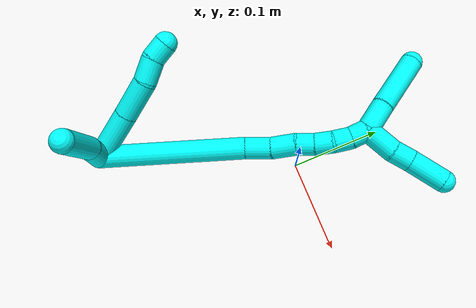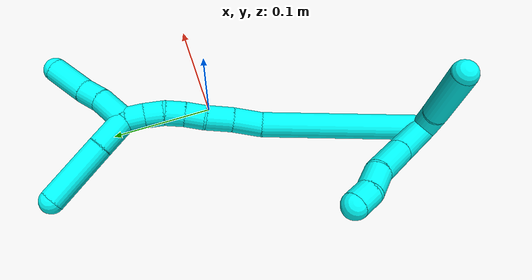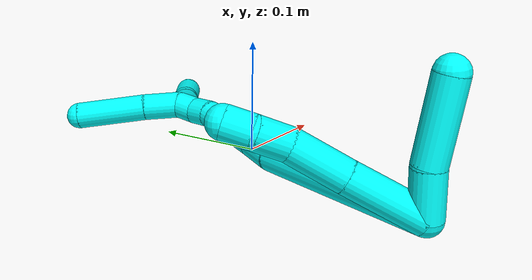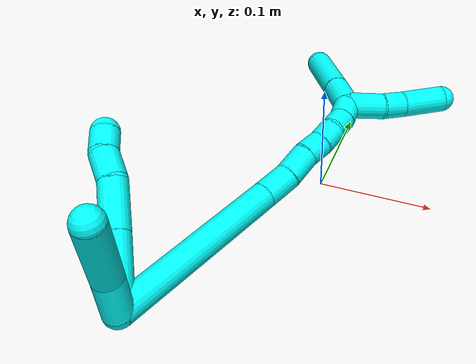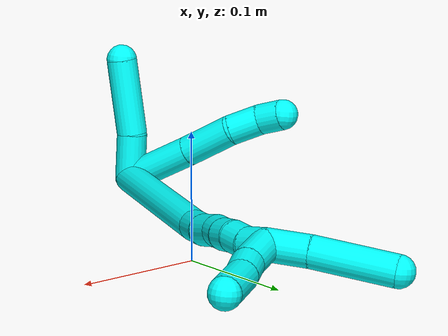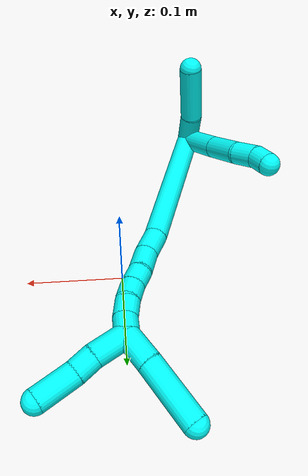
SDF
<sdf version="1.7">
 <world name="default">
  <model name="photoneo_s_sensor">
   <static>1</static>
   <pose>0 0 2 1.57079 1.57079 3.14159</pose>
   <link name="link">
    <inertial><mass>0.1</mass></inertial>
    <sensor name="sensor" type="depth">
     <update_rate>30</update_rate>
     <camera>
      <horizontal_fov>1.22</horizontal_fov>
      <image><width>1920</width><height>1200</height><format>B8G8R8</format></image>
      <clip><near>0.1</near><far>4</far></clip>
      <depth_camera><output>points</output></depth_camera>
     </camera>
     <plugin name="camera_plugin" filename="libgazebo_ros_depth_camera.so">
      <baseline>0.2</baseline>
      <alwaysOn>1</alwaysOn>
      <updateRate>0.0</updateRate>
      <cameraName>camera_ir</cameraName>
      <imageTopicName>/camera/color/image_raw</imageTopicName>
      <cameraInfoTopicName>/camera/color/camera_info</cameraInfoTopicName>
      <depthImageTopicName>/camera/depth/image_raw</depthImageTopicName>
      <depthImageCameraInfoTopicName>/camera/depth/camera_info</depthImageCameraInfoTopicName>
      <pointCloudTopicName>/camera/depth/points</pointCloudTopicName>
      <frameName>fr_optical</frameName>
      <pointCloudCutoff>0.1</pointCloudCutoff>
      <pointCloudCutoffMax>2.0</pointCloudCutoffMax>
      <distortionK1>0</distortionK1>
      <distortionK2>0</distortionK2>
      <distortionK3>0</distortionK3>
      <distortionT1>0</distortionT1>
      <distortionT2>0</distortionT2>
      <CxPrime>0</CxPrime>
      <Cx>0</Cx>
      <Cy>0</Cy>
      <focalLength>0</focalLength>
      <hackBaseline>0</hackBaseline>
     </plugin>
    </sensor>
   </link>
  </model>
  <model name="bin">
   <static>1</static>
   <link name="bottom">
    <collision name="collision-bottom">
     <pose>0 0 -0.01 0 -0 0</pose>
     <geometry><box><size>0.8 0.6 0.02</size></box></geometry>
     <surface>
      <friction><ode><mu>100</mu><mu2>100</mu2></ode></friction>
      <contact><collide_bitmask>65535</collide_bitmask></contact>
     </surface>
    </collision>
   </link>
   <link name="west_wall">
    <collision name="collision-west_wall">
     <pose>-0.41 0 0.1 0 -0 0</pose>
     <geometry><box><size>0.02 0.6 0.2</size></box></geometry>
     <surface>
      <friction><ode><mu>100</mu><mu2>100</mu2></ode></friction>
      <contact><collide_bitmask>65535</collide_bitmask></contact>
     </surface>
    </collision>
   </link>
   <link name="east_wall">
    <collision name="collision-east_wall">
     <pose>0.41 0 0.1 0 -0 0</pose>
     <geometry><box><size>0.02 0.6 0.2</size></box></geometry>
     <surface>
      <friction><ode><mu>100</mu><mu2>100</mu2></ode></friction>
      <contact><collide_bitmask>65535</collide_bitmask></contact>
     </surface>
    </collision>
   </link>
   <link name="south_wall">
    <collision name="collision-south_wall">
     <pose>0 -0.31 0.1 0 -0 0</pose>
     <geometry><box><size>0.8 0.02 0.2</size></box></geometry>
     <surface>
      <friction><ode><mu>100</mu><mu2>100</mu2></ode></friction>
      <contact><collide_bitmask>65535</collide_bitmask></contact>
     </surface>
    </collision>
   </link>
   <link name="north_wall">
    <collision name="collision-north_wall">
     <pose>0 0.31 0.1 0 -0 0</pose>
     <geometry><box><size>0.8 0.02 0.2</size></box></geometry>
     <surface>
      <friction><ode><mu>100</mu><mu2>100</mu2></ode></friction>
      <contact><collide_bitmask>65535</collide_bitmask></contact>
     </surface>
    </collision>
   </link>
  </model>
  <model name="3">
   <static>0</static>
   <link name="3">
    <collision name="collision-cylinder-e_1_2_8">
     <pose>-0.002727 0.025598 0.015291 -1.03231 -0.091202 0.051778</pose>
     <geometry><cylinder><radius>0.0125</radius><length>0.059883</length></cylinder></geometry>
     <surface>
      <friction><ode><mu>1.16</mu><mu2>1.16</mu2><slip1>0</slip1><slip2>0</slip2></ode></friction>
      <contact><ode><kp>1e+06</kp><kd>1</kd><max_vel>0</max_vel><min_depth>0.001</min_depth></ode></contact>
     </surface>
    </collision>
    <visual name="visual-cylinder-e_1_2_8">
     <pose>-0.002727 0.025598 0.015291 -1.03231 -0.091202 0.051778</pose>
     <geometry><cylinder><radius>0.0125</radius><length>0.059883</length></cylinder></geometry>
     <material><ambient>0.003922 1 0.996078 1</ambient></material>
    </visual>
    <collision name="collision-cylinder-e_2_8_9">
     <pose>-0.007488 0.069385 0.042102 -1.00626 -0.09422 0.051883</pose>
     <geometry><cylinder><radius>0.0125</radius><length>0.043252</length></cylinder></geometry>
     <surface>
      <friction><ode><mu>1.16</mu><mu2>1.16</mu2><slip1>0</slip1><slip2>0</slip2></ode></friction>
      <contact><ode><kp>1e+06</kp><kd>1</kd><max_vel>0</max_vel><min_depth>0.001</min_depth></ode></contact>
     </surface>
    </collision>
    <visual name="visual-cylinder-e_2_8_9">
     <pose>-0.007488 0.069385 0.042102 -1.00626 -0.09422 0.051883</pose>
     <geometry><cylinder><radius>0.0125</radius><length>0.043252</length></cylinder></geometry>
     <material><ambient>0.003922 1 0.996078 1</ambient></material>
    </visual>
    <collision name="collision-cylinder-e_3_9_10">
     <pose>-0.014021 0.098381 0.059378 -1.0813 -0.352073 0.212759</pose>
     <geometry><cylinder><radius>0.0125</radius><length>0.026089</length></cylinder></geometry>
     <surface>
      <friction><ode><mu>1.16</mu><mu2>1.16</mu2><slip1>0</slip1><slip2>0</slip2></ode></friction>
      <contact><ode><kp>1e+06</kp><kd>1</kd><max_vel>0</max_vel><min_depth>0.001</min_depth></ode></contact>
     </surface>
    </collision>
    <visual name="visual-cylinder-e_3_9_10">
     <pose>-0.014021 0.098381 0.059378 -1.0813 -0.352073 0.212759</pose>
     <geometry><cylinder><radius>0.0125</radius><length>0.026089</length></cylinder></geometry>
     <material><ambient>0.003922 1 0.996078 1</ambient></material>
    </visual>
    <collision name="collision-cylinder-e_4_10_6">
     <pose>-0.019207 0.118967 0.068569 -1.23309 -0.066254 0.046963</pose>
     <geometry><cylinder><radius>0.0125</radius><length>0.020776</length></cylinder></geometry>
     <surface>
      <friction><ode><mu>1.16</mu><mu2>1.16</mu2><slip1>0</slip1><slip2>0</slip2></ode></friction>
      <contact><ode><kp>1e+06</kp><kd>1</kd><max_vel>0</max_vel><min_depth>0.001</min_depth></ode></contact>
     </surface>
    </collision>
    <visual name="visual-cylinder-e_4_10_6">
     <pose>-0.019207 0.118967 0.068569 -1.23309 -0.066254 0.046963</pose>
     <geometry><cylinder><radius>0.0125</radius><length>0.020776</length></cylinder></geometry>
     <material><ambient>0.003922 1 0.996078 1</ambient></material>
    </visual>
    <collision name="collision-cylinder-e_1_2_11">
     <pose>0.000801 -0.000438 0.018627 0.023524 0.042954 0.000505</pose>
     <geometry><cylinder><radius>0.0125</radius><length>0.0373</length></cylinder></geometry>
     <surface>
      <friction><ode><mu>1.16</mu><mu2>1.16</mu2><slip1>0</slip1><slip2>0</slip2></ode></friction>
      <contact><ode><kp>1e+06</kp><kd>1</kd><max_vel>0</max_vel><min_depth>0.001</min_depth></ode></contact>
     </surface>
    </collision>
    <visual name="visual-cylinder-e_1_2_11">
     <pose>0.000801 -0.000438 0.018627 0.023524 0.042954 0.000505</pose>
     <geometry><cylinder><radius>0.0125</radius><length>0.0373</length></cylinder></geometry>
     <material><ambient>0.003922 1 0.996078 1</ambient></material>
    </visual>
    <collision name="collision-cylinder-e_2_11_5">
     <pose>0.004762 -0.006905 0.067857 0.194504 0.100995 0.009861</pose>
     <geometry><cylinder><radius>0.0125</radius><length>0.0627</length></cylinder></geometry>
     <surface>
      <friction><ode><mu>1.16</mu><mu2>1.16</mu2><slip1>0</slip1><slip2>0</slip2></ode></friction>
      <contact><ode><kp>1e+06</kp><kd>1</kd><max_vel>0</max_vel><min_depth>0.001</min_depth></ode></contact>
     </surface>
    </collision>
    <visual name="visual-cylinder-e_2_11_5">
     <pose>0.004762 -0.006905 0.067857 0.194504 0.100995 0.009861</pose>
     <geometry><cylinder><radius>0.0125</radius><length>0.0627</length></cylinder></geometry>
     <material><ambient>0.003922 1 0.996078 1</ambient></material>
    </visual>
    <collision name="collision-cylinder-e_1_2_12">
     <pose>0.050503 0.063437 -0.002293 -1.60693 0.672049 -0.694871</pose>
     <geometry><cylinder><radius>0.0125</radius><length>0.162236</length></cylinder></geometry>
     <surface>
      <friction><ode><mu>1.16</mu><mu2>1.16</mu2><slip1>0</slip1><slip2>0</slip2></ode></friction>
      <contact><ode><kp>1e+06</kp><kd>1</kd><max_vel>0</max_vel><min_depth>0.001</min_depth></ode></contact>
     </surface>
    </collision>
    <visual name="visual-cylinder-e_1_2_12">
     <pose>0.050503 0.063437 -0.002293 -1.60693 0.672049 -0.694871</pose>
     <geometry><cylinder><radius>0.0125</radius><length>0.162236</length></cylinder></geometry>
     <material><ambient>0.003922 1 0.996078 1</ambient></material>
    </visual>
    <collision name="collision-cylinder-e_2_12_13">
     <pose>0.111394 0.137322 -0.003049 -1.42461 0.77714 -0.679618</pose>
     <geometry><cylinder><radius>0.0125</radius><length>0.029626</length></cylinder></geometry>
     <surface>
      <friction><ode><mu>1.16</mu><mu2>1.16</mu2><slip1>0</slip1><slip2>0</slip2></ode></friction>
      <contact><ode><kp>1e+06</kp><kd>1</kd><max_vel>0</max_vel><min_depth>0.001</min_depth></ode></contact>
     </surface>
    </collision>
    <visual name="visual-cylinder-e_2_12_13">
     <pose>0.111394 0.137322 -0.003049 -1.42461 0.77714 -0.679618</pose>
     <geometry><cylinder><radius>0.0125</radius><length>0.029626</length></cylinder></geometry>
     <material><ambient>0.003922 1 0.996078 1</ambient></material>
    </visual>
    <collision name="collision-cylinder-e_3_13_14">
     <pose>0.130106 0.15873 0.001325 -1.31769 0.634063 -0.497539</pose>
     <geometry><cylinder><radius>0.0125</radius><length>0.028103</length></cylinder></geometry>
     <surface>
      <friction><ode><mu>1.16</mu><mu2>1.16</mu2><slip1>0</slip1><slip2>0</slip2></ode></friction>
      <contact><ode><kp>1e+06</kp><kd>1</kd><max_vel>0</max_vel><min_depth>0.001</min_depth></ode></contact>
     </surface>
    </collision>
    <visual name="visual-cylinder-e_3_13_14">
     <pose>0.130106 0.15873 0.001325 -1.31769 0.634063 -0.497539</pose>
     <geometry><cylinder><radius>0.0125</radius><length>0.028103</length></cylinder></geometry>
     <material><ambient>0.003922 1 0.996078 1</ambient></material>
    </visual>
    <collision name="collision-cylinder-e_4_14_15">
     <pose>0.145504 0.17672 0.005058 -1.44372 0.784379 -0.69842</pose>
     <geometry><cylinder><radius>0.0125</radius><length>0.020027</length></cylinder></geometry>
     <surface>
      <friction><ode><mu>1.16</mu><mu2>1.16</mu2><slip1>0</slip1><slip2>0</slip2></ode></friction>
      <contact><ode><kp>1e+06</kp><kd>1</kd><max_vel>0</max_vel><min_depth>0.001</min_depth></ode></contact>
     </surface>
    </collision>
    <visual name="visual-cylinder-e_4_14_15">
     <pose>0.145504 0.17672 0.005058 -1.44372 0.784379 -0.69842</pose>
     <geometry><cylinder><radius>0.0125</radius><length>0.020027</length></cylinder></geometry>
     <material><ambient>0.003922 1 0.996078 1</ambient></material>
    </visual>
    <collision name="collision-cylinder-e_5_15_16">
     <pose>0.158589 0.191603 0.007456 -1.38207 0.644782 -0.539113</pose>
     <geometry><cylinder><radius>0.0125</radius><length>0.020004</length></cylinder></geometry>
     <surface>
      <friction><ode><mu>1.16</mu><mu2>1.16</mu2><slip1>0</slip1><slip2>0</slip2></ode></friction>
      <contact><ode><kp>1e+06</kp><kd>1</kd><max_vel>0</max_vel><min_depth>0.001</min_depth></ode></contact>
     </surface>
    </collision>
    <visual name="visual-cylinder-e_5_15_16">
     <pose>0.158589 0.191603 0.007456 -1.38207 0.644782 -0.539113</pose>
     <geometry><cylinder><radius>0.0125</radius><length>0.020004</length></cylinder></geometry>
     <material><ambient>0.003922 1 0.996078 1</ambient></material>
    </visual>
    <collision name="collision-cylinder-e_6_16_17">
     <pose>0.169468 0.208187 0.008681 -1.60223 0.508311 -0.523823</pose>
     <geometry><cylinder><radius>0.0125</radius><length>0.020002</length></cylinder></geometry>
     <surface>
      <friction><ode><mu>1.16</mu><mu2>1.16</mu2><slip1>0</slip1><slip2>0</slip2></ode></friction>
      <contact><ode><kp>1e+06</kp><kd>1</kd><max_vel>0</max_vel><min_depth>0.001</min_depth></ode></contact>
     </surface>
    </collision>
    <visual name="visual-cylinder-e_6_16_17">
     <pose>0.169468 0.208187 0.008681 -1.60223 0.508311 -0.523823</pose>
     <geometry><cylinder><radius>0.0125</radius><length>0.020002</length></cylinder></geometry>
     <material><ambient>0.003922 1 0.996078 1</ambient></material>
    </visual>
    <collision name="collision-cylinder-e_7_17_1">
     <pose>0.177514 0.226243 0.010132 -1.38773 0.323417 -0.269759</pose>
     <geometry><cylinder><radius>0.0125</radius><length>0.020002</length></cylinder></geometry>
     <surface>
      <friction><ode><mu>1.16</mu><mu2>1.16</mu2><slip1>0</slip1><slip2>0</slip2></ode></friction>
      <contact><ode><kp>1e+06</kp><kd>1</kd><max_vel>0</max_vel><min_depth>0.001</min_depth></ode></contact>
     </surface>
    </collision>
    <visual name="visual-cylinder-e_7_17_1">
     <pose>0.177514 0.226243 0.010132 -1.38773 0.323417 -0.269759</pose>
     <geometry><cylinder><radius>0.0125</radius><length>0.020002</length></cylinder></geometry>
     <material><ambient>0.003922 1 0.996078 1</ambient></material>
    </visual>
    <collision name="collision-cylinder-e_1_1_18">
     <pose>0.197844 0.238473 0.007837 -2.51593 1.28922 -2.32893</pose>
     <geometry><cylinder><radius>0.0125</radius><length>0.035711</length></cylinder></geometry>
     <surface>
      <friction><ode><mu>1.16</mu><mu2>1.16</mu2><slip1>0</slip1><slip2>0</slip2></ode></friction>
      <contact><ode><kp>1e+06</kp><kd>1</kd><max_vel>0</max_vel><min_depth>0.001</min_depth></ode></contact>
     </surface>
    </collision>
    <visual name="visual-cylinder-e_1_1_18">
     <pose>0.197844 0.238473 0.007837 -2.51593 1.28922 -2.32893</pose>
     <geometry><cylinder><radius>0.0125</radius><length>0.035711</length></cylinder></geometry>
     <material><ambient>0.003922 1 0.996078 1</ambient></material>
    </visual>
    <collision name="collision-cylinder-e_2_18_19">
     <pose>0.225324 0.245225 0.00163 -2.08748 1.16611 -1.6956</pose>
     <geometry><cylinder><radius>0.0125</radius><length>0.022472</length></cylinder></geometry>
     <surface>
      <friction><ode><mu>1.16</mu><mu2>1.16</mu2><slip1>0</slip1><slip2>0</slip2></ode></friction>
      <contact><ode><kp>1e+06</kp><kd>1</kd><max_vel>0</max_vel><min_depth>0.001</min_depth></ode></contact>
     </surface>
    </collision>
    <visual name="visual-cylinder-e_2_18_19">
     <pose>0.225324 0.245225 0.00163 -2.08748 1.16611 -1.6956</pose>
     <geometry><cylinder><radius>0.0125</radius><length>0.022472</length></cylinder></geometry>
     <material><ambient>0.003922 1 0.996078 1</ambient></material>
    </visual>
    <collision name="collision-cylinder-e_3_19_4">
     <pose>0.25572 0.25459 -0.002568 -1.9204 1.28603 -1.639</pose>
     <geometry><cylinder><radius>0.0125</radius><length>0.041818</length></cylinder></geometry>
     <surface>
      <friction><ode><mu>1.16</mu><mu2>1.16</mu2><slip1>0</slip1><slip2>0</slip2></ode></friction>
      <contact><ode><kp>1e+06</kp><kd>1</kd><max_vel>0</max_vel><min_depth>0.001</min_depth></ode></contact>
     </surface>
    </collision>
    <visual name="visual-cylinder-e_3_19_4">
     <pose>0.25572 0.25459 -0.002568 -1.9204 1.28603 -1.639</pose>
     <geometry><cylinder><radius>0.0125</radius><length>0.041818</length></cylinder></geometry>
     <material><ambient>0.003922 1 0.996078 1</ambient></material>
    </visual>
    <collision name="collision-cylinder-e_1_1_20">
     <pose>0.176347 0.252047 0.01169 -1.58105 -0.257757 0.260384</pose>
     <geometry><cylinder><radius>0.0125</radius><length>0.034087</length></cylinder></geometry>
     <surface>
      <friction><ode><mu>1.16</mu><mu2>1.16</mu2><slip1>0</slip1><slip2>0</slip2></ode></friction>
      <contact><ode><kp>1e+06</kp><kd>1</kd><max_vel>0</max_vel><min_depth>0.001</min_depth></ode></contact>
     </surface>
    </collision>
    <visual name="visual-cylinder-e_1_1_20">
     <pose>0.176347 0.252047 0.01169 -1.58105 -0.257757 0.260384</pose>
     <geometry><cylinder><radius>0.0125</radius><length>0.034087</length></cylinder></geometry>
     <material><ambient>0.003922 1 0.996078 1</ambient></material>
    </visual>
    <collision name="collision-cylinder-e_2_20_3">
     <pose>0.164061 0.300423 0.009142 -1.64524 -0.243369 0.261988</pose>
     <geometry><cylinder><radius>0.0125</radius><length>0.065913</length></cylinder></geometry>
     <surface>
      <friction><ode><mu>1.16</mu><mu2>1.16</mu2><slip1>0</slip1><slip2>0</slip2></ode></friction>
      <contact><ode><kp>1e+06</kp><kd>1</kd><max_vel>0</max_vel><min_depth>0.001</min_depth></ode></contact>
     </surface>
    </collision>
    <visual name="visual-cylinder-e_2_20_3">
     <pose>0.164061 0.300423 0.009142 -1.64524 -0.243369 0.261988</pose>
     <geometry><cylinder><radius>0.0125</radius><length>0.065913</length></cylinder></geometry>
     <material><ambient>0.003922 1 0.996078 1</ambient></material>
    </visual>
    <collision name="collision-sphere-3">
     <pose>0.156119 0.33232 0.006763 0 -0 0</pose>
     <geometry><sphere><radius>0.0125</radius></sphere></geometry>
     <surface>
      <friction><ode><mu>1.16</mu><mu2>1.16</mu2><slip1>0</slip1><slip2>0</slip2></ode></friction>
      <contact><ode><kp>1e+06</kp><kd>1</kd><max_vel>0</max_vel><min_depth>0.001</min_depth></ode></contact>
     </surface>
    </collision>
    <visual name="visual-sphere-3">
     <pose>0.156119 0.33232 0.006763 0 -0 0</pose>
     <geometry><sphere><radius>0.0125</radius></sphere></geometry>
     <material><ambient>0.003922 1 0.996078 1</ambient></material>
    </visual>
    <collision name="collision-sphere-20">
     <pose>0.172003 0.268526 0.011521 0 -0 0</pose>
     <geometry><sphere><radius>0.0125</radius></sphere></geometry>
     <surface>
      <friction><ode><mu>1.16</mu><mu2>1.16</mu2><slip1>0</slip1><slip2>0</slip2></ode></friction>
      <contact><ode><kp>1e+06</kp><kd>1</kd><max_vel>0</max_vel><min_depth>0.001</min_depth></ode></contact>
     </surface>
    </collision>
    <visual name="visual-sphere-20">
     <pose>0.172003 0.268526 0.011521 0 -0 0</pose>
     <geometry><sphere><radius>0.0125</radius></sphere></geometry>
     <material><ambient>0.003922 1 0.996078 1</ambient></material>
    </visual>
    <collision name="collision-sphere-4">
     <pose>0.275786 0.260109 -0.00458 0 -0 0</pose>
     <geometry><sphere><radius>0.0125</radius></sphere></geometry>
     <surface>
      <friction><ode><mu>1.16</mu><mu2>1.16</mu2><slip1>0</slip1><slip2>0</slip2></ode></friction>
      <contact><ode><kp>1e+06</kp><kd>1</kd><max_vel>0</max_vel><min_depth>0.001</min_depth></ode></contact>
     </surface>
    </collision>
    <visual name="visual-sphere-4">
     <pose>0.275786 0.260109 -0.00458 0 -0 0</pose>
     <geometry><sphere><radius>0.0125</radius></sphere></geometry>
     <material><ambient>0.003922 1 0.996078 1</ambient></material>
    </visual>
    <collision name="collision-sphere-11">
     <pose>0.001602 -0.000877 0.037255 0 -0 0</pose>
     <geometry><sphere><radius>0.0125</radius></sphere></geometry>
     <surface>
      <friction><ode><mu>1.16</mu><mu2>1.16</mu2><slip1>0</slip1><slip2>0</slip2></ode></friction>
      <contact><ode><kp>1e+06</kp><kd>1</kd><max_vel>0</max_vel><min_depth>0.001</min_depth></ode></contact>
     </surface>
    </collision>
    <visual name="visual-sphere-11">
     <pose>0.001602 -0.000877 0.037255 0 -0 0</pose>
     <geometry><sphere><radius>0.0125</radius></sphere></geometry>
     <material><ambient>0.003922 1 0.996078 1</ambient></material>
    </visual>
    <collision name="collision-sphere-6">
     <pose>-0.019895 0.128746 0.072003 0 -0 0</pose>
     <geometry><sphere><radius>0.0125</radius></sphere></geometry>
     <surface>
      <friction><ode><mu>1.16</mu><mu2>1.16</mu2><slip1>0</slip1><slip2>0</slip2></ode></friction>
      <contact><ode><kp>1e+06</kp><kd>1</kd><max_vel>0</max_vel><min_depth>0.001</min_depth></ode></contact>
     </surface>
    </collision>
    <visual name="visual-sphere-6">
     <pose>-0.019895 0.128746 0.072003 0 -0 0</pose>
     <geometry><sphere><radius>0.0125</radius></sphere></geometry>
     <material><ambient>0.003922 1 0.996078 1</ambient></material>
    </visual>
    <collision name="collision-sphere-10">
     <pose>-0.01852 0.109187 0.065135 0 -0 0</pose>
     <geometry><sphere><radius>0.0125</radius></sphere></geometry>
     <surface>
      <friction><ode><mu>1.16</mu><mu2>1.16</mu2><slip1>0</slip1><slip2>0</slip2></ode></friction>
      <contact><ode><kp>1e+06</kp><kd>1</kd><max_vel>0</max_vel><min_depth>0.001</min_depth></ode></contact>
     </surface>
    </collision>
    <visual name="visual-sphere-10">
     <pose>-0.01852 0.109187 0.065135 0 -0 0</pose>
     <geometry><sphere><radius>0.0125</radius></sphere></geometry>
     <material><ambient>0.003922 1 0.996078 1</ambient></material>
    </visual>
    <collision name="collision-sphere-9">
     <pose>-0.009523 0.087574 0.053621 0 -0 0</pose>
     <geometry><sphere><radius>0.0125</radius></sphere></geometry>
     <surface>
      <friction><ode><mu>1.16</mu><mu2>1.16</mu2><slip1>0</slip1><slip2>0</slip2></ode></friction>
      <contact><ode><kp>1e+06</kp><kd>1</kd><max_vel>0</max_vel><min_depth>0.001</min_depth></ode></contact>
     </surface>
    </collision>
    <visual name="visual-sphere-9">
     <pose>-0.009523 0.087574 0.053621 0 -0 0</pose>
     <geometry><sphere><radius>0.0125</radius></sphere></geometry>
     <material><ambient>0.003922 1 0.996078 1</ambient></material>
    </visual>
    <collision name="collision-sphere-2">
     <geometry><sphere><radius>0.0125</radius></sphere></geometry>
     <surface>
      <friction><ode><mu>1.16</mu><mu2>1.16</mu2><slip1>0</slip1><slip2>0</slip2></ode></friction>
      <contact><ode><kp>1e+06</kp><kd>1</kd><max_vel>0</max_vel><min_depth>0.001</min_depth></ode></contact>
     </surface>
    </collision>
    <visual name="visual-sphere-2">
     <geometry><sphere><radius>0.0125</radius></sphere></geometry>
     <material><ambient>0.003922 1 0.996078 1</ambient></material>
    </visual>
    <collision name="collision-sphere-19">
     <pose>0.235653 0.249072 -0.000556 0 -0 0</pose>
     <geometry><sphere><radius>0.0125</radius></sphere></geometry>
     <surface>
      <friction><ode><mu>1.16</mu><mu2>1.16</mu2><slip1>0</slip1><slip2>0</slip2></ode></friction>
      <contact><ode><kp>1e+06</kp><kd>1</kd><max_vel>0</max_vel><min_depth>0.001</min_depth></ode></contact>
     </surface>
    </collision>
    <visual name="visual-sphere-19">
     <pose>0.235653 0.249072 -0.000556 0 -0 0</pose>
     <geometry><sphere><radius>0.0125</radius></sphere></geometry>
     <material><ambient>0.003922 1 0.996078 1</ambient></material>
    </visual>
    <collision name="collision-sphere-8">
     <pose>-0.005454 0.051195 0.030583 0 -0 0</pose>
     <geometry><sphere><radius>0.0125</radius></sphere></geometry>
     <surface>
      <friction><ode><mu>1.16</mu><mu2>1.16</mu2><slip1>0</slip1><slip2>0</slip2></ode></friction>
      <contact><ode><kp>1e+06</kp><kd>1</kd><max_vel>0</max_vel><min_depth>0.001</min_depth></ode></contact>
     </surface>
    </collision>
    <visual name="visual-sphere-8">
     <pose>-0.005454 0.051195 0.030583 0 -0 0</pose>
     <geometry><sphere><radius>0.0125</radius></sphere></geometry>
     <material><ambient>0.003922 1 0.996078 1</ambient></material>
    </visual>
    <collision name="collision-sphere-5">
     <pose>0.007923 -0.012934 0.09846 0 -0 0</pose>
     <geometry><sphere><radius>0.0125</radius></sphere></geometry>
     <surface>
      <friction><ode><mu>1.16</mu><mu2>1.16</mu2><slip1>0</slip1><slip2>0</slip2></ode></friction>
      <contact><ode><kp>1e+06</kp><kd>1</kd><max_vel>0</max_vel><min_depth>0.001</min_depth></ode></contact>
     </surface>
    </collision>
    <visual name="visual-sphere-5">
     <pose>0.007923 -0.012934 0.09846 0 -0 0</pose>
     <geometry><sphere><radius>0.0125</radius></sphere></geometry>
     <material><ambient>0.003922 1 0.996078 1</ambient></material>
    </visual>
    <collision name="collision-sphere-12">
     <pose>0.101007 0.126875 -0.004587 0 -0 0</pose>
     <geometry><sphere><radius>0.0125</radius></sphere></geometry>
     <surface>
      <friction><ode><mu>1.16</mu><mu2>1.16</mu2><slip1>0</slip1><slip2>0</slip2></ode></friction>
      <contact><ode><kp>1e+06</kp><kd>1</kd><max_vel>0</max_vel><min_depth>0.001</min_depth></ode></contact>
     </surface>
    </collision>
    <visual name="visual-sphere-12">
     <pose>0.101007 0.126875 -0.004587 0 -0 0</pose>
     <geometry><sphere><radius>0.0125</radius></sphere></geometry>
     <material><ambient>0.003922 1 0.996078 1</ambient></material>
    </visual>
    <collision name="collision-sphere-13">
     <pose>0.121782 0.14777 -0.00151 0 -0 0</pose>
     <geometry><sphere><radius>0.0125</radius></sphere></geometry>
     <surface>
      <friction><ode><mu>1.16</mu><mu2>1.16</mu2><slip1>0</slip1><slip2>0</slip2></ode></friction>
      <contact><ode><kp>1e+06</kp><kd>1</kd><max_vel>0</max_vel><min_depth>0.001</min_depth></ode></contact>
     </surface>
    </collision>
    <visual name="visual-sphere-13">
     <pose>0.121782 0.14777 -0.00151 0 -0 0</pose>
     <geometry><sphere><radius>0.0125</radius></sphere></geometry>
     <material><ambient>0.003922 1 0.996078 1</ambient></material>
    </visual>
    <collision name="collision-sphere-14">
     <pose>0.138431 0.16969 0.004159 0 -0 0</pose>
     <geometry><sphere><radius>0.0125</radius></sphere></geometry>
     <surface>
      <friction><ode><mu>1.16</mu><mu2>1.16</mu2><slip1>0</slip1><slip2>0</slip2></ode></friction>
      <contact><ode><kp>1e+06</kp><kd>1</kd><max_vel>0</max_vel><min_depth>0.001</min_depth></ode></contact>
     </surface>
    </collision>
    <visual name="visual-sphere-14">
     <pose>0.138431 0.16969 0.004159 0 -0 0</pose>
     <geometry><sphere><radius>0.0125</radius></sphere></geometry>
     <material><ambient>0.003922 1 0.996078 1</ambient></material>
    </visual>
    <collision name="collision-sphere-15">
     <pose>0.152577 0.183751 0.005956 0 -0 0</pose>
     <geometry><sphere><radius>0.0125</radius></sphere></geometry>
     <surface>
      <friction><ode><mu>1.16</mu><mu2>1.16</mu2><slip1>0</slip1><slip2>0</slip2></ode></friction>
      <contact><ode><kp>1e+06</kp><kd>1</kd><max_vel>0</max_vel><min_depth>0.001</min_depth></ode></contact>
     </surface>
    </collision>
    <visual name="visual-sphere-15">
     <pose>0.152577 0.183751 0.005956 0 -0 0</pose>
     <geometry><sphere><radius>0.0125</radius></sphere></geometry>
     <material><ambient>0.003922 1 0.996078 1</ambient></material>
    </visual>
    <collision name="collision-sphere-16">
     <pose>0.1646 0.199455 0.008955 0 -0 0</pose>
     <geometry><sphere><radius>0.0125</radius></sphere></geometry>
     <surface>
      <friction><ode><mu>1.16</mu><mu2>1.16</mu2><slip1>0</slip1><slip2>0</slip2></ode></friction>
      <contact><ode><kp>1e+06</kp><kd>1</kd><max_vel>0</max_vel><min_depth>0.001</min_depth></ode></contact>
     </surface>
    </collision>
    <visual name="visual-sphere-16">
     <pose>0.1646 0.199455 0.008955 0 -0 0</pose>
     <geometry><sphere><radius>0.0125</radius></sphere></geometry>
     <material><ambient>0.003922 1 0.996078 1</ambient></material>
    </visual>
    <collision name="collision-sphere-17">
     <pose>0.174335 0.216919 0.008406 0 -0 0</pose>
     <geometry><sphere><radius>0.0125</radius></sphere></geometry>
     <surface>
      <friction><ode><mu>1.16</mu><mu2>1.16</mu2><slip1>0</slip1><slip2>0</slip2></ode></friction>
      <contact><ode><kp>1e+06</kp><kd>1</kd><max_vel>0</max_vel><min_depth>0.001</min_depth></ode></contact>
     </surface>
    </collision>
    <visual name="visual-sphere-17">
     <pose>0.174335 0.216919 0.008406 0 -0 0</pose>
     <geometry><sphere><radius>0.0125</radius></sphere></geometry>
     <material><ambient>0.003922 1 0.996078 1</ambient></material>
    </visual>
    <collision name="collision-sphere-1">
     <pose>0.180692 0.235567 0.011859 0 -0 0</pose>
     <geometry><sphere><radius>0.0125</radius></sphere></geometry>
     <surface>
      <friction><ode><mu>1.16</mu><mu2>1.16</mu2><slip1>0</slip1><slip2>0</slip2></ode></friction>
      <contact><ode><kp>1e+06</kp><kd>1</kd><max_vel>0</max_vel><min_depth>0.001</min_depth></ode></contact>
     </surface>
    </collision>
    <visual name="visual-sphere-1">
     <pose>0.180692 0.235567 0.011859 0 -0 0</pose>
     <geometry><sphere><radius>0.0125</radius></sphere></geometry>
     <material><ambient>0.003922 1 0.996078 1</ambient></material>
    </visual>
    <collision name="collision-sphere-18">
     <pose>0.214996 0.241379 0.003815 0 -0 0</pose>
     <geometry><sphere><radius>0.0125</radius></sphere></geometry>
     <surface>
      <friction><ode><mu>1.16</mu><mu2>1.16</mu2><slip1>0</slip1><slip2>0</slip2></ode></friction>
      <contact><ode><kp>1e+06</kp><kd>1</kd><max_vel>0</max_vel><min_depth>0.001</min_depth></ode></contact>
     </surface>
    </collision>
    <visual name="visual-sphere-18">
     <pose>0.214996 0.241379 0.003815 0 -0 0</pose>
     <geometry><sphere><radius>0.0125</radius></sphere></geometry>
     <material><ambient>0.003922 1 0.996078 1</ambient></material>
    </visual>
    <inertial>
     <pose>0.0892 0.129429 0.016095 0 -0 0</pose>
     <mass>0.75</mass>
     <inertia>
      <ixx>0.000153</ixx>
      <ixy>0</ixy>
      <ixz>0</ixz>
      <iyy>5.5e-05</iyy>
      <iyz>0</iyz>
      <izz>-0.000575</izz>
     </inertia>
    </inertial>
   </link>
   <pose>-0.0921 -0.197571 0.012712 -0.04605 -0.095586 0.33935</pose>
  </model>
 </world>
</sdf>
